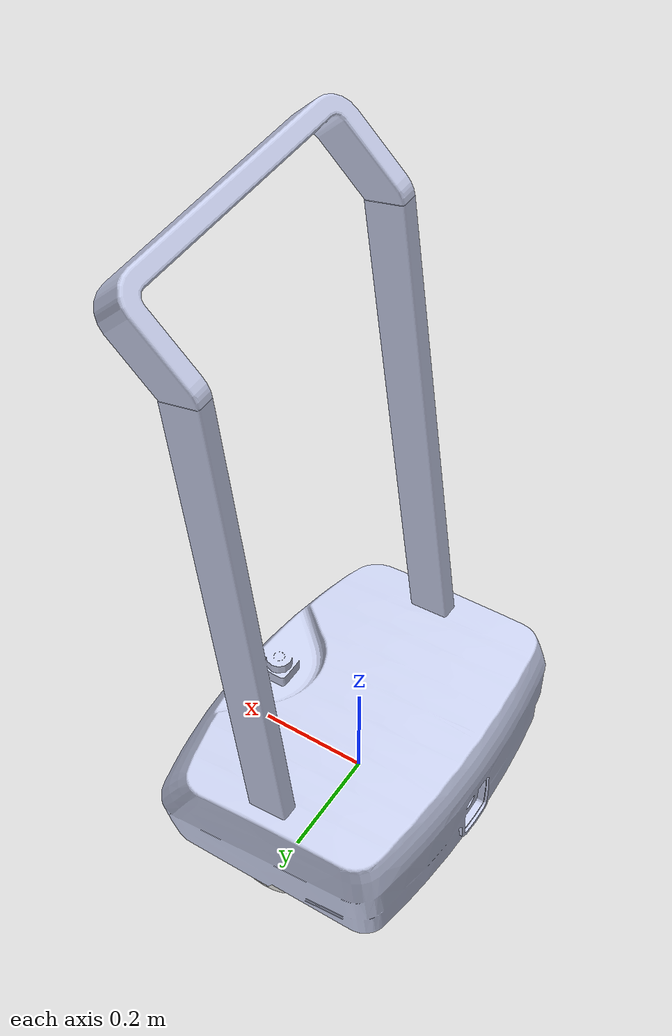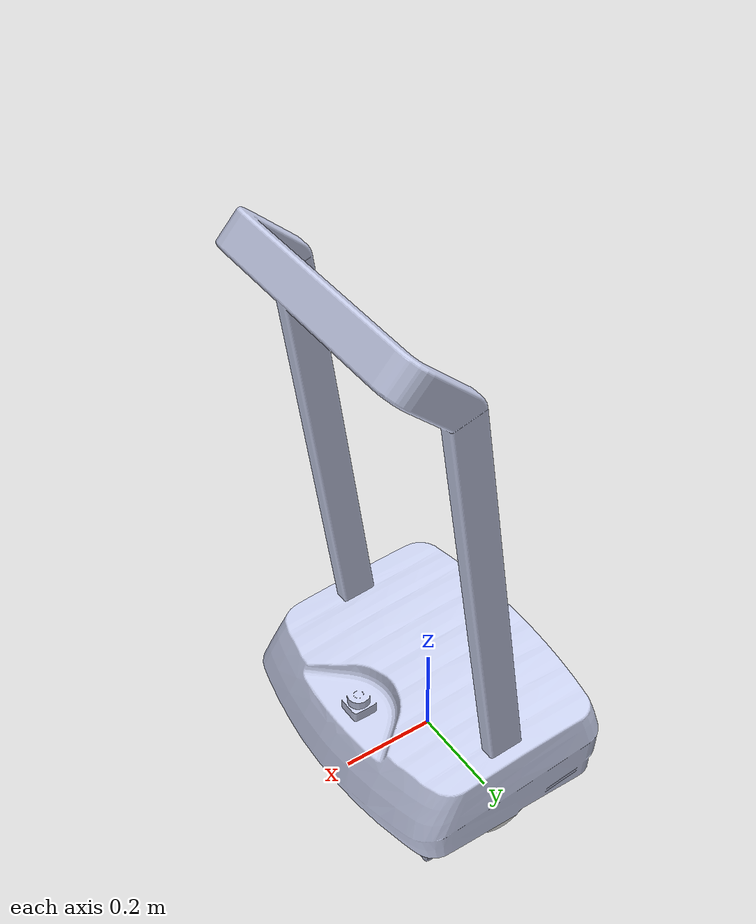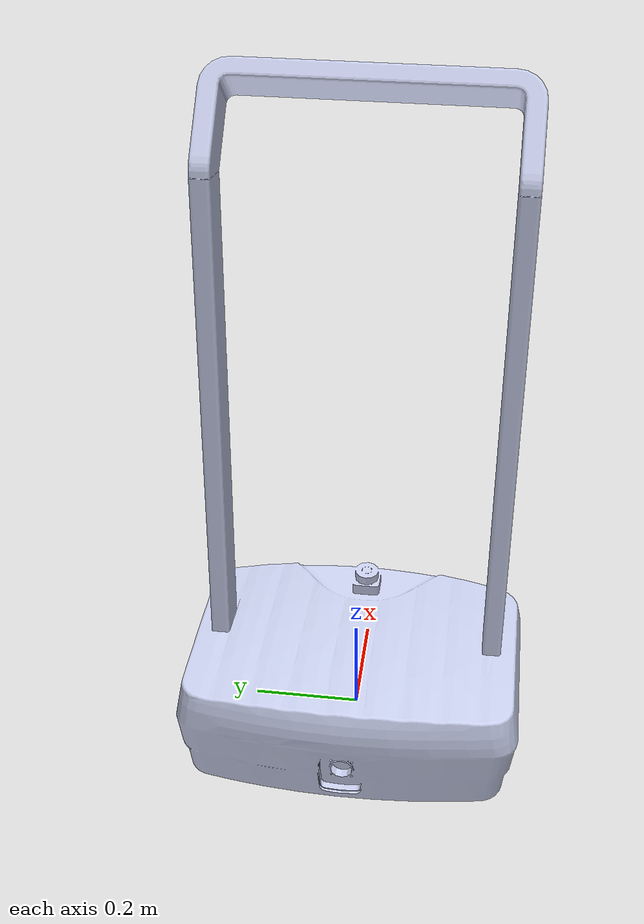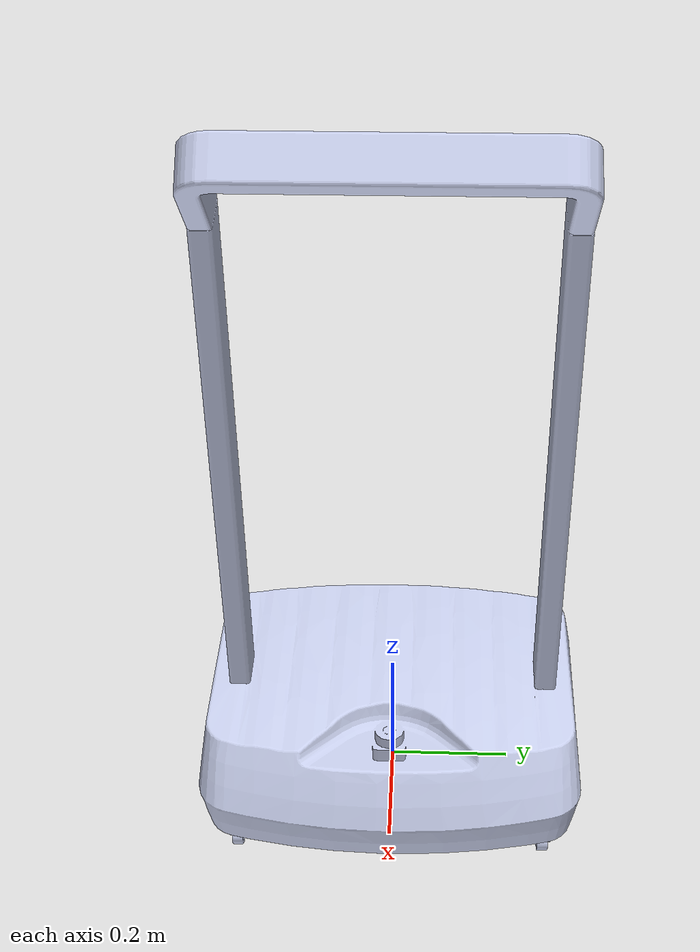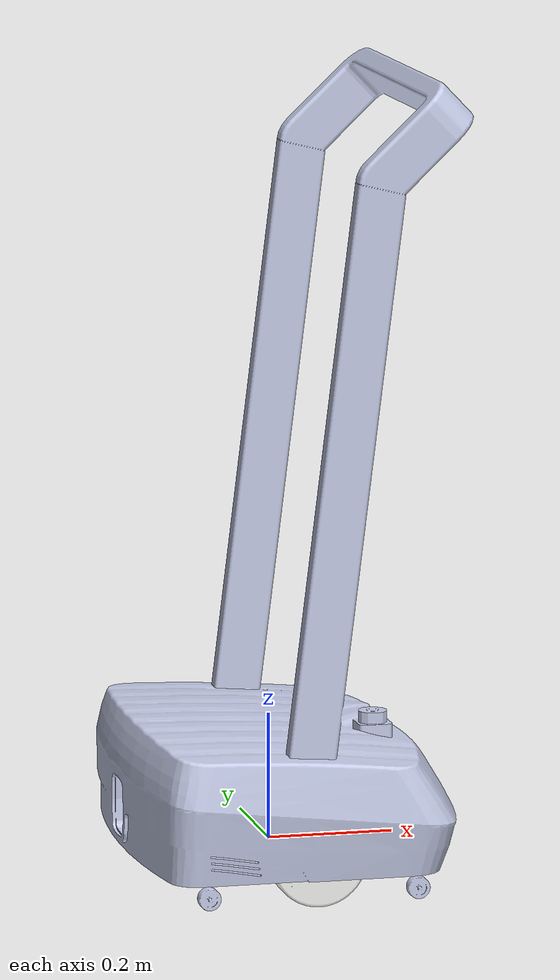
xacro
<?xml version="1.0" encoding="utf-8"?>
<robot>
  <link name="base_link">
    <inertial>
      <origin
        xyz="0.0065132540264814 0.00136276106591204 0.15823095354149"
        rpy="0 0 0" />
      <mass
        value="32.5370047332158" />
      <inertia
        ixx="1.86782747849832"
        ixy="-0.000933522235429167"
        ixz="-0.0965412925988386"
        iyy="1.43980812088733"
        iyz="0.00636285334393433"
        izz="1.50682356346103" />
    </inertial>
    <visual>
      <origin
        xyz="0 0 0"
        rpy="0 0 0" />
      <geometry>
        <mesh
          filename="package://alfred/meshes/base_link.STL" />
      </geometry>
      <material
        name="">
        <color
          rgba="0.792156862745098 0.819607843137255 0.933333333333333 1" />
      </material>
    </visual>
    <collision>
      <origin
        xyz="0 0 0"
        rpy="0 0 0" />
      <geometry>
        <mesh
          filename="package://alfred/meshes/base_link.STL" />
      </geometry>
    </collision>
  </link>
  <link name="right_wheel">
    <inertial>
      <origin
        xyz="4.44089209850063E-16 5.55111512312578E-17 3.79926307011447E-05"
        rpy="0 0 0" />
      <mass
        value="0.870754309555773" />
      <inertia
        ixx="0.0014701677220743"
        ixy="5.47076577627259E-19"
        ixz="3.30821336876901E-21"
        iyy="0.0014701677220743"
        iyz="-7.28479562221043E-18"
        izz="0.00255011290896298" />
    </inertial>
    <visual>
      <origin
        xyz="0 0 0"
        rpy="0 0 0" />
      <geometry>
        <mesh
          filename="package://alfred/meshes/right_wheel.STL" />
      </geometry>
      <material
        name="">
        <color
          rgba="0.964705882352941 0.964705882352941 0.952941176470588 1" />
      </material>
    </visual>
    <collision>
      <origin
        xyz="0 0 0"
        rpy="0 0 0" />
      <geometry>
        <mesh
          filename="package://alfred/meshes/right_wheel.STL" />
      </geometry>
    </collision>
  </link>
  <joint name="rightwheel"
    type="continuous">
    <origin
      xyz="0.015963 0.25598 0.029318"
      rpy="-1.5708 0 0" />
    <parent
      link="base_link" />
    <child
      link="right_wheel" />
    <axis
      xyz="0 0 1" />
  </joint>
  <link name="left_wheel">
    <inertial>
      <origin
        xyz="2.22044604925031E-16 1.11022302462516E-16 -3.79926307011447E-05"
        rpy="0 0 0" />
      <mass
        value="0.870754309555774" />
      <inertia
        ixx="0.0014701677220743"
        ixy="9.09397953815072E-22"
        ixz="-2.00483216474024E-19"
        iyy="0.0014701677220743"
        iyz="-3.97186169090865E-18"
        izz="0.00255011290896299" />
    </inertial>
    <visual>
      <origin
        xyz="0 0 0"
        rpy="0 0 0" />
      <geometry>
        <mesh
          filename="package://alfred/meshes/left_wheel.STL" />
      </geometry>
      <material
        name="">
        <color
          rgba="0.964705882352941 0.964705882352941 0.952941176470588 1" />
      </material>
    </visual>
    <collision>
      <origin
        xyz="0 0 0"
        rpy="0 0 0" />
      <geometry>
        <mesh
          filename="package://alfred/meshes/left_wheel.STL" />
      </geometry>
    </collision>
  </link>
  <joint name="leftwheel"
    type="continuous">
    <origin
      xyz="0.015963 -0.25602 0.029318"
      rpy="-1.5708 0 0" />
    <parent
      link="base_link" />
    <child
      link="left_wheel" />
    <axis
      xyz="0 0 -1" />
  </joint>
  <link name="caster_1">
    <inertial>
      <origin
        xyz="0 5.55111512312578E-17 -1.66533453693773E-16"
        rpy="0 0 0" />
      <mass
        value="0.015690813753013" />
      <inertia
        ixx="1.58354144834464E-06"
        ixy="-1.80555932286303E-35"
        ixz="9.43612260945113E-22"
        iyy="1.58354144834464E-06"
        iyz="-2.42372869581876E-21"
        izz="2.34601871071801E-06" />
    </inertial>
    <visual>
      <origin
        xyz="0 0 0"
        rpy="0 0 0" />
      <geometry>
        <mesh
          filename="package://alfred/meshes/caster_1.STL" />
      </geometry>
      <material
        name="">
        <color
          rgba="0.792156862745098 0.819607843137255 0.933333333333333 1" />
      </material>
    </visual>
    <collision>
      <origin
        xyz="0 0 0"
        rpy="0 0 0" />
      <geometry>
        <mesh
          filename="package://alfred/meshes/caster_1.STL" />
      </geometry>
    </collision>
  </link>
  <joint name="caster 1"
    type="fixed">
    <origin
      xyz="0.17826 -0.25504 -0.02882"
      rpy="-1.5708 0 0" />
    <parent
      link="base_link" />
    <child
      link="caster_1" />
    <axis
      xyz="0 0 0" />
  </joint>
  <link name="caster_2">
    <inertial>
      <origin
        xyz="0 -3.60822483003176E-16 -1.11022302462516E-16"
        rpy="0 0 0" />
      <mass
        value="0.0156908137530131" />
      <inertia
        ixx="1.58354144834465E-06"
        ixy="-1.05324293833677E-34"
        ixz="-1.45084165925365E-20"
        iyy="1.58354144834465E-06"
        iyz="5.58148465464623E-21"
        izz="2.34601871071802E-06" />
    </inertial>
    <visual>
      <origin
        xyz="0 0 0"
        rpy="0 0 0" />
      <geometry>
        <mesh
          filename="package://alfred/meshes/caster_2.STL" />
      </geometry>
      <material
        name="">
        <color
          rgba="0.792156862745098 0.819607843137255 0.933333333333333 1" />
      </material>
    </visual>
    <collision>
      <origin
        xyz="0 0 0"
        rpy="0 0 0" />
      <geometry>
        <mesh
          filename="package://alfred/meshes/caster_2.STL" />
      </geometry>
    </collision>
  </link>
  <joint name="caster2"
    type="continuous">
    <origin
      xyz="0.17826 0.2552 -0.02882"
      rpy="-1.5708 0 0" />
    <parent
      link="base_link" />
    <child
      link="caster_2" />
    <axis
      xyz="0 0 -1" />
  </joint>
  <link name="caster_3">
    <inertial>
      <origin
        xyz="-0.0171450000000002 -2.4980018054066E-16 -1.0547118733939E-14"
        rpy="0 0 0" />
      <mass
        value="0.015690813753013" />
      <inertia
        ixx="1.58354144834464E-06"
        ixy="1.80555932286303E-35"
        ixz="-7.64322547508233E-21"
        iyy="1.58354144834464E-06"
        iyz="-2.41077504742601E-21"
        izz="2.34601871071801E-06" />
    </inertial>
    <visual>
      <origin
        xyz="0 0 0"
        rpy="0 0 0" />
      <geometry>
        <mesh
          filename="package://alfred/meshes/caster_3.STL" />
      </geometry>
      <material
        name="">
        <color
          rgba="0.792156862745098 0.819607843137255 0.933333333333333 1" />
      </material>
    </visual>
    <collision>
      <origin
        xyz="0 0 0"
        rpy="0 0 0" />
      <geometry>
        <mesh
          filename="package://alfred/meshes/caster_3.STL" />
      </geometry>
    </collision>
  </link>
  <joint name="caster3"
    type="continuous">
    <origin
      xyz="-0.13637 0.2552 -0.02882"
      rpy="-1.5708 0 0" />
    <parent
      link="base_link" />
    <child
      link="caster_3" />
    <axis
      xyz="0 0 -1" />
  </joint>
  <link name="caster_4">
    <inertial>
      <origin
        xyz="2.22044604925031E-16 -2.77555756156289E-17 1.11022302462516E-16"
        rpy="0 0 0" />
      <mass
        value="0.015690813753013" />
      <inertia
        ixx="1.58354144834464E-06"
        ixy="-1.20370621524202E-35"
        ixz="-1.44308362581399E-22"
        iyy="1.58354144834464E-06"
        iyz="-2.42551540594186E-21"
        izz="2.34601871071801E-06" />
    </inertial>
    <visual>
      <origin
        xyz="0 0 0"
        rpy="0 0 0" />
      <geometry>
        <mesh
          filename="package://alfred/meshes/caster_4.STL" />
      </geometry>
      <material
        name="">
        <color
          rgba="0.792156862745098 0.819607843137255 0.933333333333333 1" />
      </material>
    </visual>
    <collision>
      <origin
        xyz="0 0 0"
        rpy="0 0 0" />
      <geometry>
        <mesh
          filename="package://alfred/meshes/caster_4.STL" />
      </geometry>
    </collision>
  </link>
  <joint name="caster4"
    type="continuous">
    <origin
      xyz="-0.153514598447958 -0.255040666518411 -0.028820000000002"
      rpy="-1.5707963267949 0 0" />
    <parent
      link="base_link" />
    <child
      link="caster_4" />
    <axis
      xyz="0 0 -1" />
  </joint>
</robot>
